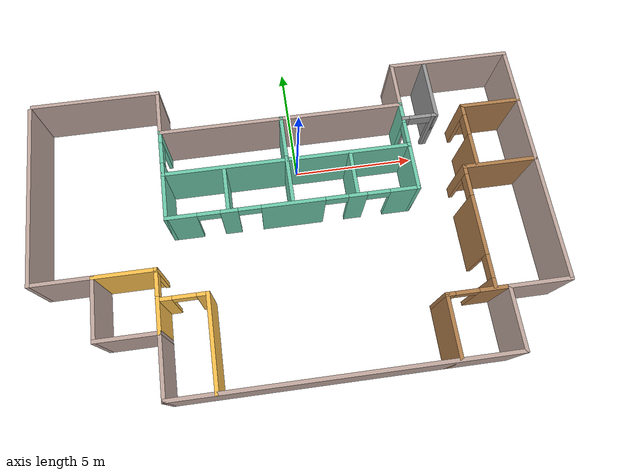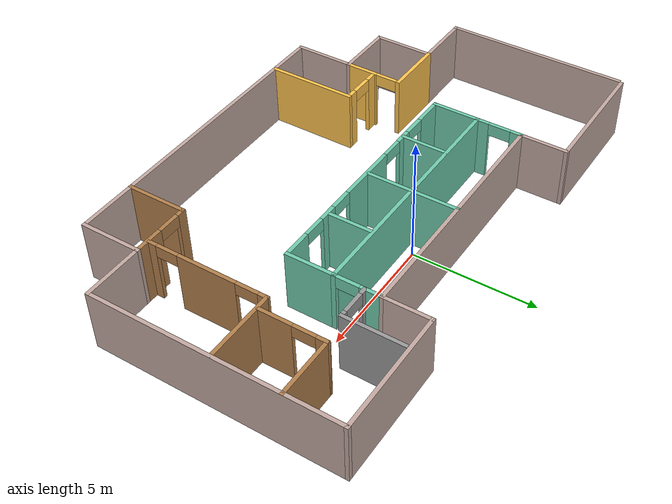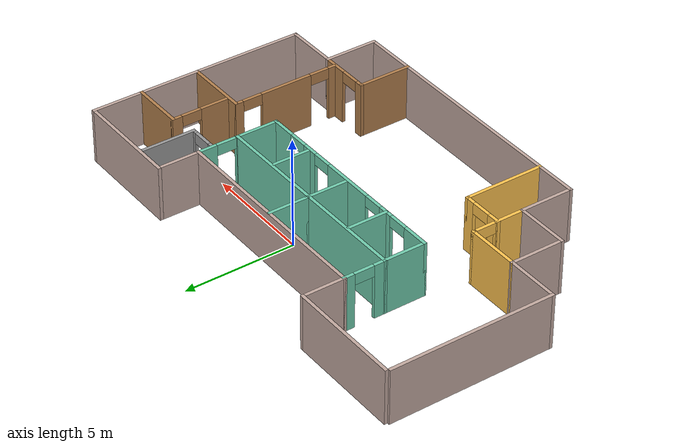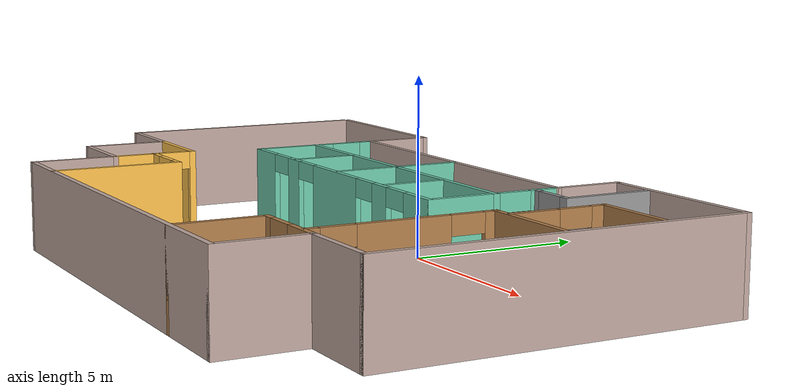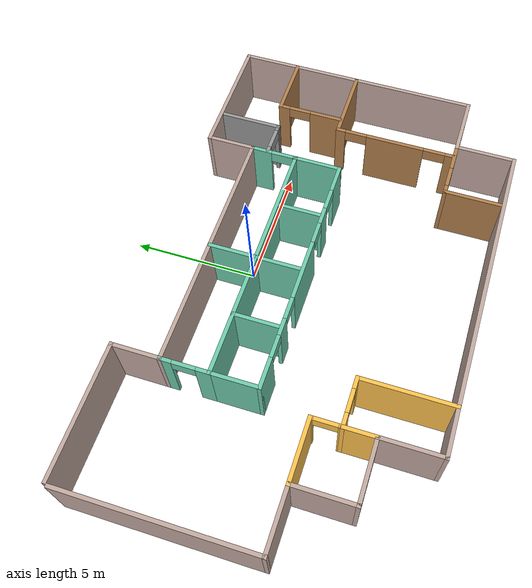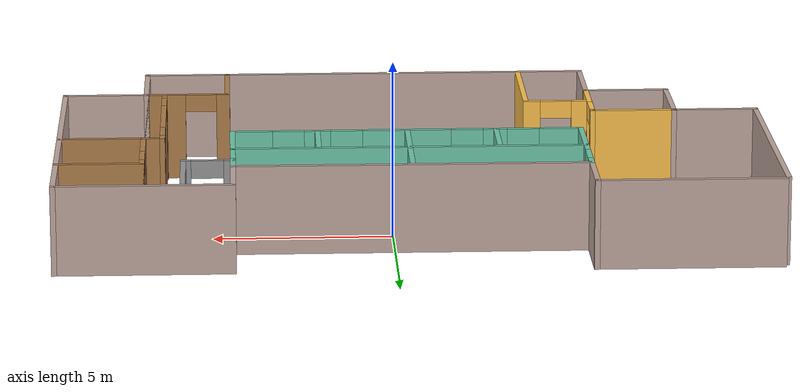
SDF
<?xml version='1.0'?>
<sdf version='1.7'>
  <model name='Building'>
    <pose>-0.660873 -2.80363 0 0 -0 0</pose>
    <link name='Wall_10'>
      <collision name='Wall_10_Collision'>
        <geometry>
          <box>
            <size>2.5 0.15 2.5</size>
          </box>
        </geometry>
        <pose>0 0 1.25 0 -0 0</pose>
      </collision>
      <visual name='Wall_10_Visual'>
        <pose>0 0 1.25 0 -0 0</pose>
        <geometry>
          <box>
            <size>2.5 0.15 2.5</size>
          </box>
        </geometry>
        <material>
          <script>
            <uri>file://media/materials/scripts/gazebo.material</uri>
            <name>Gazebo/Grey</name>
          </script>
          <ambient>0.760784 0.662745 0.627451 1</ambient>
        </material>
        <meta>
          <layer>0</layer>
        </meta>
      </visual>
      <pose>7.6 -4.925 0 0 -0 1.5708</pose>
    </link>
    <link name='Wall_11'>
      <collision name='Wall_11_Collision'>
        <geometry>
          <box>
            <size>2.5 0.15 2.5</size>
          </box>
        </geometry>
        <pose>0 0 1.25 0 -0 0</pose>
      </collision>
      <visual name='Wall_11_Visual'>
        <pose>0 0 1.25 0 -0 0</pose>
        <geometry>
          <box>
            <size>2.5 0.15 2.5</size>
          </box>
        </geometry>
        <material>
          <script>
            <uri>file://media/materials/scripts/gazebo.material</uri>
            <name>Gazebo/Grey</name>
          </script>
          <ambient>0.760784 0.662745 0.627451 1</ambient>
        </material>
        <meta>
          <layer>0</layer>
        </meta>
      </visual>
      <pose>8.775 -3.75 0 0 -0 0</pose>
    </link>
    <link name='Wall_12'>
      <collision name='Wall_12_Collision'>
        <geometry>
          <box>
            <size>10 0.15 2.5</size>
          </box>
        </geometry>
        <pose>0 0 1.25 0 -0 0</pose>
      </collision>
      <visual name='Wall_12_Visual'>
        <pose>0 0 1.25 0 -0 0</pose>
        <geometry>
          <box>
            <size>10 0.15 2.5</size>
          </box>
        </geometry>
        <material>
          <script>
            <uri>file://media/materials/scripts/gazebo.material</uri>
            <name>Gazebo/Grey</name>
          </script>
          <ambient>0.760784 0.662745 0.627451 1</ambient>
        </material>
        <meta>
          <layer>0</layer>
        </meta>
      </visual>
      <pose>9.95 1.175 0 0 -0 1.5708</pose>
    </link>
    <link name='Wall_14'>
      <collision name='Wall_14_Collision'>
        <geometry>
          <box>
            <size>5 0.15 2.5</size>
          </box>
        </geometry>
        <pose>0 0 1.25 0 -0 0</pose>
      </collision>
      <visual name='Wall_14_Visual'>
        <pose>0 0 1.25 0 -0 0</pose>
        <geometry>
          <box>
            <size>5 0.15 2.5</size>
          </box>
        </geometry>
        <material>
          <script>
            <uri>file://media/materials/scripts/gazebo.material</uri>
            <name>Gazebo/Grey</name>
          </script>
          <ambient>0.760784 0.662745 0.627451 1</ambient>
        </material>
        <meta>
          <layer>0</layer>
        </meta>
      </visual>
      <pose>7.525 6.1 0 0 -0 3.14159</pose>
    </link>
    <link name='Wall_15'>
      <collision name='Wall_15_Collision'>
        <geometry>
          <box>
            <size>2 0.15 2.5</size>
          </box>
        </geometry>
        <pose>0 0 1.25 0 -0 0</pose>
      </collision>
      <visual name='Wall_15_Visual'>
        <pose>0 0 1.25 0 -0 0</pose>
        <geometry>
          <box>
            <size>2 0.15 2.5</size>
          </box>
        </geometry>
        <material>
          <script>
            <uri>file://media/materials/scripts/gazebo.material</uri>
            <name>Gazebo/Grey</name>
          </script>
          <ambient>0.760784 0.662745 0.627451 1</ambient>
        </material>
        <meta>
          <layer>0</layer>
        </meta>
      </visual>
      <pose>5.1 5.175 0 0 -0 -1.5708</pose>
    </link>
    <link name='Wall_17'>
      <collision name='Wall_17_Collision'>
        <geometry>
          <box>
            <size>10 0.15 2.5</size>
          </box>
        </geometry>
        <pose>0 0 1.25 0 -0 0</pose>
      </collision>
      <visual name='Wall_17_Visual'>
        <pose>0 0 1.25 0 -0 0</pose>
        <geometry>
          <box>
            <size>10 0.15 2.5</size>
          </box>
        </geometry>
        <material>
          <script>
            <uri>file://media/materials/scripts/gazebo.material</uri>
            <name>Gazebo/Grey</name>
          </script>
          <ambient>0.760784 0.662745 0.627451 1</ambient>
        </material>
        <meta>
          <layer>0</layer>
        </meta>
      </visual>
      <pose>0.175 4.25 0 0 -0 3.14159</pose>
    </link>
    <link name='Wall_18'>
      <collision name='Wall_18_Collision'>
        <geometry>
          <box>
            <size>2 0.15 2.5</size>
          </box>
        </geometry>
        <pose>0 0 1.25 0 -0 0</pose>
      </collision>
      <visual name='Wall_18_Visual'>
        <pose>0 0 1.25 0 -0 0</pose>
        <geometry>
          <box>
            <size>2 0.15 2.5</size>
          </box>
        </geometry>
        <material>
          <script>
            <uri>file://media/materials/scripts/gazebo.material</uri>
            <name>Gazebo/Grey</name>
          </script>
          <ambient>0.760784 0.662745 0.627451 1</ambient>
        </material>
        <meta>
          <layer>0</layer>
        </meta>
      </visual>
      <pose>-4.75 5.175 0 0 -0 1.5708</pose>
    </link>
    <link name='Wall_21'>
      <collision name='Wall_21_Collision'>
        <geometry>
          <box>
            <size>7.5 0.15 2.5</size>
          </box>
        </geometry>
        <pose>0 0 1.25 0 -0 0</pose>
      </collision>
      <visual name='Wall_21_Visual'>
        <pose>0 0 1.25 0 -0 0</pose>
        <geometry>
          <box>
            <size>7.5 0.15 2.5</size>
          </box>
        </geometry>
        <material>
          <script>
            <uri>file://media/materials/scripts/gazebo.material</uri>
            <name>Gazebo/Grey</name>
          </script>
          <ambient>0.760784 0.662745 0.627451 1</ambient>
        </material>
        <meta>
          <layer>0</layer>
        </meta>
      </visual>
      <pose>-9.95 2.275 0 0 -0 1.5708</pose>
    </link>
    <link name='Wall_23'>
      <collision name='Wall_23_Collision'>
        <geometry>
          <box>
            <size>5.25 0.15 2.5</size>
          </box>
        </geometry>
        <pose>0 0 1.25 0 -0 0</pose>
      </collision>
      <visual name='Wall_23_Visual'>
        <pose>0 0 1.25 0 -0 0</pose>
        <geometry>
          <box>
            <size>5.25 0.15 2.5</size>
          </box>
        </geometry>
        <material>
          <script>
            <uri>file://media/materials/scripts/gazebo.material</uri>
            <name>Gazebo/Grey</name>
          </script>
          <ambient>0.760784 0.662745 0.627451 1</ambient>
        </material>
        <meta>
          <layer>0</layer>
        </meta>
      </visual>
      <pose>-7.3 6.1 0 0 -0 3.14159</pose>
    </link>
    <link name='Wall_25'>
      <collision name='Wall_25_Collision'>
        <geometry>
          <box>
            <size>2.5 0.15 2.5</size>
          </box>
        </geometry>
        <pose>0 0 1.25 0 -0 0</pose>
      </collision>
      <visual name='Wall_25_Visual'>
        <pose>0 0 1.25 0 -0 0</pose>
        <geometry>
          <box>
            <size>2.5 0.15 2.5</size>
          </box>
        </geometry>
        <material>
          <script>
            <uri>file://media/materials/scripts/gazebo.material</uri>
            <name>Gazebo/Grey</name>
          </script>
          <ambient>1 0.764706 0.305882 1</ambient>
        </material>
        <meta>
          <layer>0</layer>
        </meta>
      </visual>
      <pose>-6.425 -1.4 0 0 -0 0</pose>
    </link>
    <link name='Wall_26'>
      <pose>-5.25 -2.575 0 0 -0 -1.5708</pose>
      <visual name='Wall_26_Visual_0'>
        <pose>-1.15697 0 1.25 0 -0 0</pose>
        <geometry>
          <box>
            <size>0.186058 0.15 2.5</size>
          </box>
        </geometry>
        <material>
          <script>
            <uri>file://media/materials/scripts/gazebo.material</uri>
            <name>Gazebo/Grey</name>
          </script>
          <ambient>1 0.764706 0.305882 1</ambient>
        </material>
        <meta>
          <layer>0</layer>
        </meta>
      </visual>
      <collision name='Wall_26_Collision_0'>
        <geometry>
          <box>
            <size>0.186058 0.15 2.5</size>
          </box>
        </geometry>
        <pose>-1.15697 0 1.25 0 -0 0</pose>
      </collision>
      <visual name='Wall_26_Visual_1'>
        <pose>0.543029 0 1.25 0 -0 0</pose>
        <geometry>
          <box>
            <size>1.41394 0.15 2.5</size>
          </box>
        </geometry>
        <material>
          <script>
            <uri>file://media/materials/scripts/gazebo.material</uri>
            <name>Gazebo/Grey</name>
          </script>
          <ambient>1 0.764706 0.305882 1</ambient>
        </material>
        <meta>
          <layer>0</layer>
        </meta>
      </visual>
      <collision name='Wall_26_Collision_1'>
        <geometry>
          <box>
            <size>1.41394 0.15 2.5</size>
          </box>
        </geometry>
        <pose>0.543029 0 1.25 0 -0 0</pose>
      </collision>
      <visual name='Wall_26_Visual_2'>
        <pose>-0.613942 0 2.25 0 -0 0</pose>
        <geometry>
          <box>
            <size>0.9 0.15 0.5</size>
          </box>
        </geometry>
        <material>
          <script>
            <uri>file://media/materials/scripts/gazebo.material</uri>
            <name>Gazebo/Grey</name>
          </script>
          <ambient>1 0.764706 0.305882 1</ambient>
        </material>
        <meta>
          <layer>0</layer>
        </meta>
      </visual>
      <collision name='Wall_26_Collision_2'>
        <geometry>
          <box>
            <size>0.9 0.15 0.5</size>
          </box>
        </geometry>
        <pose>-0.613942 0 2.25 0 -0 0</pose>
      </collision>
    </link>
    <link name='Wall_3'>
      <collision name='Wall_3_Collision'>
        <geometry>
          <box>
            <size>13 0.15 2.5</size>
          </box>
        </geometry>
        <pose>0 0 1.25 0 -0 0</pose>
      </collision>
      <visual name='Wall_3_Visual'>
        <pose>0 0 1.25 0 -0 0</pose>
        <geometry>
          <box>
            <size>13 0.15 2.5</size>
          </box>
        </geometry>
        <material>
          <script>
            <uri>file://media/materials/scripts/gazebo.material</uri>
            <name>Gazebo/Grey</name>
          </script>
          <ambient>0.760784 0.662745 0.627451 1</ambient>
        </material>
        <meta>
          <layer>0</layer>
        </meta>
      </visual>
      <pose>1.175 -6.1 0 0 -0 0</pose>
    </link>
    <link name='Wall_30'>
      <pose>-4.33028 -2.54296 0 0 -0 0</pose>
      <visual name='Wall_30_Visual_0'>
        <pose>-0.698175 0 1.25 0 -0 0</pose>
        <geometry>
          <box>
            <size>0.60365 0.15 2.5</size>
          </box>
        </geometry>
        <material>
          <script>
            <uri>file://media/materials/scripts/gazebo.material</uri>
            <name>Gazebo/Grey</name>
          </script>
          <ambient>1 0.764706 0.305882 1</ambient>
        </material>
        <meta>
          <layer>0</layer>
        </meta>
      </visual>
      <collision name='Wall_30_Collision_0'>
        <geometry>
          <box>
            <size>0.60365 0.15 2.5</size>
          </box>
        </geometry>
        <pose>-0.698175 0 1.25 0 -0 0</pose>
      </collision>
      <visual name='Wall_30_Visual_1'>
        <pose>0.751825 0 1.25 0 -0 0</pose>
        <geometry>
          <box>
            <size>0.49635 0.15 2.5</size>
          </box>
        </geometry>
        <material>
          <script>
            <uri>file://media/materials/scripts/gazebo.material</uri>
            <name>Gazebo/Grey</name>
          </script>
          <ambient>1 0.764706 0.305882 1</ambient>
        </material>
        <meta>
          <layer>0</layer>
        </meta>
      </visual>
      <collision name='Wall_30_Collision_1'>
        <geometry>
          <box>
            <size>0.49635 0.15 2.5</size>
          </box>
        </geometry>
        <pose>0.751825 0 1.25 0 -0 0</pose>
      </collision>
      <visual name='Wall_30_Visual_2'>
        <pose>0.05365 0 2.25 0 -0 0</pose>
        <geometry>
          <box>
            <size>0.9 0.15 0.5</size>
          </box>
        </geometry>
        <material>
          <script>
            <uri>file://media/materials/scripts/gazebo.material</uri>
            <name>Gazebo/Grey</name>
          </script>
          <ambient>1 0.764706 0.305882 1</ambient>
        </material>
        <meta>
          <layer>0</layer>
        </meta>
      </visual>
      <collision name='Wall_30_Collision_2'>
        <geometry>
          <box>
            <size>0.9 0.15 0.5</size>
          </box>
        </geometry>
        <pose>0.05365 0 2.25 0 -0 0</pose>
      </collision>
    </link>
    <link name='Wall_31'>
      <collision name='Wall_31_Collision'>
        <geometry>
          <box>
            <size>3.7 0.15 2.5</size>
          </box>
        </geometry>
        <pose>0 0 1.25 0 -0 0</pose>
      </collision>
      <visual name='Wall_31_Visual'>
        <pose>0 0 1.25 0 -0 0</pose>
        <geometry>
          <box>
            <size>3.7 0.15 2.5</size>
          </box>
        </geometry>
        <material>
          <script>
            <uri>file://media/materials/scripts/gazebo.material</uri>
            <name>Gazebo/Grey</name>
          </script>
          <ambient>1 0.764706 0.305882 1</ambient>
        </material>
        <meta>
          <layer>0</layer>
        </meta>
      </visual>
      <pose>-3.40528 -4.31796 0 0 -0 -1.5708</pose>
    </link>
    <link name='Wall_33'>
      <pose>6.425 -3.75 0 0 -0 3.14159</pose>
      <visual name='Wall_33_Visual_0'>
        <pose>-0.64371 0 1.25 0 -0 0</pose>
        <geometry>
          <box>
            <size>1.21258 0.15 2.5</size>
          </box>
        </geometry>
        <material>
          <script>
            <uri>file://media/materials/scripts/gazebo.material</uri>
            <name>Gazebo/Wood</name>
          </script>
          <ambient>0.996078 0.47451 0.0196078 1</ambient>
        </material>
        <meta>
          <layer>0</layer>
        </meta>
      </visual>
      <collision name='Wall_33_Collision_0'>
        <geometry>
          <box>
            <size>1.21258 0.15 2.5</size>
          </box>
        </geometry>
        <pose>-0.64371 0 1.25 0 -0 0</pose>
      </collision>
      <visual name='Wall_33_Visual_1'>
        <pose>1.05629 0 1.25 0 -0 0</pose>
        <geometry>
          <box>
            <size>0.387421 0.15 2.5</size>
          </box>
        </geometry>
        <material>
          <script>
            <uri>file://media/materials/scripts/gazebo.material</uri>
            <name>Gazebo/Wood</name>
          </script>
          <ambient>0.996078 0.47451 0.0196078 1</ambient>
        </material>
        <meta>
          <layer>0</layer>
        </meta>
      </visual>
      <collision name='Wall_33_Collision_1'>
        <geometry>
          <box>
            <size>0.387421 0.15 2.5</size>
          </box>
        </geometry>
        <pose>1.05629 0 1.25 0 -0 0</pose>
      </collision>
      <visual name='Wall_33_Visual_2'>
        <pose>0.412579 0 2.25 0 -0 0</pose>
        <geometry>
          <box>
            <size>0.9 0.15 0.5</size>
          </box>
        </geometry>
        <material>
          <script>
            <uri>file://media/materials/scripts/gazebo.material</uri>
            <name>Gazebo/Wood</name>
          </script>
          <ambient>0.996078 0.47451 0.0196078 1</ambient>
        </material>
        <meta>
          <layer>0</layer>
        </meta>
      </visual>
      <collision name='Wall_33_Collision_2'>
        <geometry>
          <box>
            <size>0.9 0.15 0.5</size>
          </box>
        </geometry>
        <pose>0.412579 0 2.25 0 -0 0</pose>
      </collision>
    </link>
    <link name='Wall_34'>
      <collision name='Wall_34_Collision'>
        <geometry>
          <box>
            <size>2.5 0.15 2.5</size>
          </box>
        </geometry>
        <pose>0 0 1.25 0 -0 0</pose>
      </collision>
      <visual name='Wall_34_Visual'>
        <pose>0 0 1.25 0 -0 0</pose>
        <geometry>
          <box>
            <size>2.5 0.15 2.5</size>
          </box>
        </geometry>
        <material>
          <script>
            <uri>file://media/materials/scripts/gazebo.material</uri>
            <name>Gazebo/Wood</name>
          </script>
          <ambient>0.996078 0.47451 0.0196078 1</ambient>
        </material>
        <meta>
          <layer>0</layer>
        </meta>
      </visual>
      <pose>5.25 -4.925 0 0 -0 -1.5708</pose>
    </link>
    <link name='Wall_36'>
      <pose>7.07042 -1.25531 0 0 -0 1.5708</pose>
      <visual name='Wall_36_Visual_0'>
        <pose>-2.30397 0 1.25 0 -0 0</pose>
        <geometry>
          <box>
            <size>0.39205 0.15 2.5</size>
          </box>
        </geometry>
        <material>
          <script>
            <uri>file://media/materials/scripts/gazebo.material</uri>
            <name>Gazebo/Wood</name>
          </script>
          <ambient>0.996078 0.47451 0.0196078 1</ambient>
        </material>
        <meta>
          <layer>0</layer>
        </meta>
      </visual>
      <collision name='Wall_36_Collision_0'>
        <geometry>
          <box>
            <size>0.39205 0.15 2.5</size>
          </box>
        </geometry>
        <pose>-2.30397 0 1.25 0 -0 0</pose>
      </collision>
      <visual name='Wall_36_Visual_1'>
        <pose>-0.004825 0 1.25 0 -0 0</pose>
        <geometry>
          <box>
            <size>2.40625 0.15 2.5</size>
          </box>
        </geometry>
        <material>
          <script>
            <uri>file://media/materials/scripts/gazebo.material</uri>
            <name>Gazebo/Wood</name>
          </script>
          <ambient>0.996078 0.47451 0.0196078 1</ambient>
        </material>
        <meta>
          <layer>0</layer>
        </meta>
      </visual>
      <collision name='Wall_36_Collision_1'>
        <geometry>
          <box>
            <size>2.40625 0.15 2.5</size>
          </box>
        </geometry>
        <pose>-0.004825 0 1.25 0 -0 0</pose>
      </collision>
      <visual name='Wall_36_Visual_2'>
        <pose>2.29915 0 1.25 0 -0 0</pose>
        <geometry>
          <box>
            <size>0.4017 0.15 2.5</size>
          </box>
        </geometry>
        <material>
          <script>
            <uri>file://media/materials/scripts/gazebo.material</uri>
            <name>Gazebo/Wood</name>
          </script>
          <ambient>0.996078 0.47451 0.0196078 1</ambient>
        </material>
        <meta>
          <layer>0</layer>
        </meta>
      </visual>
      <collision name='Wall_36_Collision_2'>
        <geometry>
          <box>
            <size>0.4017 0.15 2.5</size>
          </box>
        </geometry>
        <pose>2.29915 0 1.25 0 -0 0</pose>
      </collision>
      <visual name='Wall_36_Visual_3'>
        <pose>-1.65795 0 2.25 0 -0 0</pose>
        <geometry>
          <box>
            <size>0.9 0.15 0.5</size>
          </box>
        </geometry>
        <material>
          <script>
            <uri>file://media/materials/scripts/gazebo.material</uri>
            <name>Gazebo/Wood</name>
          </script>
          <ambient>0.996078 0.47451 0.0196078 1</ambient>
        </material>
        <meta>
          <layer>0</layer>
        </meta>
      </visual>
      <collision name='Wall_36_Collision_3'>
        <geometry>
          <box>
            <size>0.9 0.15 0.5</size>
          </box>
        </geometry>
        <pose>-1.65795 0 2.25 0 -0 0</pose>
      </collision>
      <visual name='Wall_36_Visual_4'>
        <pose>1.6483 0 2.25 0 -0 0</pose>
        <geometry>
          <box>
            <size>0.9 0.15 0.5</size>
          </box>
        </geometry>
        <material>
          <script>
            <uri>file://media/materials/scripts/gazebo.material</uri>
            <name>Gazebo/Wood</name>
          </script>
          <ambient>0.996078 0.47451 0.0196078 1</ambient>
        </material>
        <meta>
          <layer>0</layer>
        </meta>
      </visual>
      <collision name='Wall_36_Collision_4'>
        <geometry>
          <box>
            <size>0.9 0.15 0.5</size>
          </box>
        </geometry>
        <pose>1.6483 0 2.25 0 -0 0</pose>
      </collision>
    </link>
    <link name='Wall_37'>
      <collision name='Wall_37_Collision'>
        <geometry>
          <box>
            <size>3 0.15 2.5</size>
          </box>
        </geometry>
        <pose>0 0 1.25 0 -0 0</pose>
      </collision>
      <visual name='Wall_37_Visual'>
        <pose>0 0 1.25 0 -0 0</pose>
        <geometry>
          <box>
            <size>3 0.15 2.5</size>
          </box>
        </geometry>
        <material>
          <script>
            <uri>file://media/materials/scripts/gazebo.material</uri>
            <name>Gazebo/Wood</name>
          </script>
          <ambient>0.996078 0.47451 0.0196078 1</ambient>
        </material>
        <meta>
          <layer>0</layer>
        </meta>
      </visual>
      <pose>8.49542 1.16969 0 0 -0 0</pose>
    </link>
    <link name='Wall_39'>
      <pose>7.59942 2.53939 0 0 -0 1.5708</pose>
      <visual name='Wall_39_Visual_0'>
        <pose>-0.68965 0 1.25 0 -0 0</pose>
        <geometry>
          <box>
            <size>1.3707 0.15 2.5</size>
          </box>
        </geometry>
        <material>
          <script>
            <uri>file://media/materials/scripts/gazebo.material</uri>
            <name>Gazebo/Wood</name>
          </script>
          <ambient>0.996078 0.47451 0.0196078 1</ambient>
        </material>
        <meta>
          <layer>0</layer>
        </meta>
      </visual>
      <collision name='Wall_39_Collision_0'>
        <geometry>
          <box>
            <size>1.3707 0.15 2.5</size>
          </box>
        </geometry>
        <pose>-0.68965 0 1.25 0 -0 0</pose>
      </collision>
      <visual name='Wall_39_Visual_1'>
        <pose>1.13535 0 1.25 0 -0 0</pose>
        <geometry>
          <box>
            <size>0.4793 0.15 2.5</size>
          </box>
        </geometry>
        <material>
          <script>
            <uri>file://media/materials/scripts/gazebo.material</uri>
            <name>Gazebo/Wood</name>
          </script>
          <ambient>0.996078 0.47451 0.0196078 1</ambient>
        </material>
        <meta>
          <layer>0</layer>
        </meta>
      </visual>
      <collision name='Wall_39_Collision_1'>
        <geometry>
          <box>
            <size>0.4793 0.15 2.5</size>
          </box>
        </geometry>
        <pose>1.13535 0 1.25 0 -0 0</pose>
      </collision>
      <visual name='Wall_39_Visual_2'>
        <pose>0.4457 0 2.25 0 -0 0</pose>
        <geometry>
          <box>
            <size>0.9 0.15 0.5</size>
          </box>
        </geometry>
        <material>
          <script>
            <uri>file://media/materials/scripts/gazebo.material</uri>
            <name>Gazebo/Wood</name>
          </script>
          <ambient>0.996078 0.47451 0.0196078 1</ambient>
        </material>
        <meta>
          <layer>0</layer>
        </meta>
      </visual>
      <collision name='Wall_39_Collision_2'>
        <geometry>
          <box>
            <size>0.9 0.15 0.5</size>
          </box>
        </geometry>
        <pose>0.4457 0 2.25 0 -0 0</pose>
      </collision>
    </link>
    <link name='Wall_42'>
      <collision name='Wall_42_Collision'>
        <geometry>
          <box>
            <size>2.5 0.15 2.5</size>
          </box>
        </geometry>
        <pose>0 0 1.25 0 -0 0</pose>
      </collision>
      <visual name='Wall_42_Visual'>
        <pose>0 0 1.25 0 -0 0</pose>
        <geometry>
          <box>
            <size>2.5 0.15 2.5</size>
          </box>
        </geometry>
        <material>
          <script>
            <uri>file://media/materials/scripts/gazebo.material</uri>
            <name>Gazebo/Wood</name>
          </script>
          <ambient>0.996078 0.47451 0.0196078 1</ambient>
        </material>
        <meta>
          <layer>0</layer>
        </meta>
      </visual>
      <pose>8.77442 3.83939 0 0 -0 0</pose>
    </link>
    <link name='Wall_44'>
      <pose>-4.75 3.325 0 0 -0 -1.5708</pose>
      <visual name='Wall_44_Visual_0'>
        <pose>-0.740196 0 1.25 0 -0 0</pose>
        <geometry>
          <box>
            <size>0.519608 0.15 2.5</size>
          </box>
        </geometry>
        <material>
          <script>
            <uri>file://media/materials/scripts/gazebo.material</uri>
            <name>Gazebo/Grey</name>
          </script>
          <ambient>0.435294 0.796078 0.67451 1</ambient>
        </material>
        <meta>
          <layer>0</layer>
        </meta>
      </visual>
      <collision name='Wall_44_Collision_0'>
        <geometry>
          <box>
            <size>0.519608 0.15 2.5</size>
          </box>
        </geometry>
        <pose>-0.740196 0 1.25 0 -0 0</pose>
      </collision>
      <visual name='Wall_44_Visual_1'>
        <pose>0.709804 0 1.25 0 -0 0</pose>
        <geometry>
          <box>
            <size>0.580392 0.15 2.5</size>
          </box>
        </geometry>
        <material>
          <script>
            <uri>file://media/materials/scripts/gazebo.material</uri>
            <name>Gazebo/Grey</name>
          </script>
          <ambient>0.435294 0.796078 0.67451 1</ambient>
        </material>
        <meta>
          <layer>0</layer>
        </meta>
      </visual>
      <collision name='Wall_44_Collision_1'>
        <geometry>
          <box>
            <size>0.580392 0.15 2.5</size>
          </box>
        </geometry>
        <pose>0.709804 0 1.25 0 -0 0</pose>
      </collision>
      <visual name='Wall_44_Visual_2'>
        <pose>-0.030392 0 2.25 0 -0 0</pose>
        <geometry>
          <box>
            <size>0.9 0.15 0.5</size>
          </box>
        </geometry>
        <material>
          <script>
            <uri>file://media/materials/scripts/gazebo.material</uri>
            <name>Gazebo/Grey</name>
          </script>
          <ambient>0.435294 0.796078 0.67451 1</ambient>
        </material>
        <meta>
          <layer>0</layer>
        </meta>
      </visual>
      <collision name='Wall_44_Collision_2'>
        <geometry>
          <box>
            <size>0.9 0.15 0.5</size>
          </box>
        </geometry>
        <pose>-0.030392 0 2.25 0 -0 0</pose>
      </collision>
    </link>
    <link name='Wall_45'>
      <collision name='Wall_45_Collision'>
        <geometry>
          <box>
            <size>10 0.15 2.5</size>
          </box>
        </geometry>
        <pose>0 0 1.25 0 -0 0</pose>
      </collision>
      <visual name='Wall_45_Visual'>
        <pose>0 0 1.25 0 -0 0</pose>
        <geometry>
          <box>
            <size>10 0.15 2.5</size>
          </box>
        </geometry>
        <material>
          <script>
            <uri>file://media/materials/scripts/gazebo.material</uri>
            <name>Gazebo/Grey</name>
          </script>
          <ambient>0.435294 0.796078 0.67451 1</ambient>
        </material>
        <meta>
          <layer>0</layer>
        </meta>
      </visual>
      <pose>0.175 2.4 0 0 -0 0</pose>
    </link>
    <link name='Wall_46'>
      <pose>5.1 3.325 0 0 -0 1.5708</pose>
      <visual name='Wall_46_Visual_0'>
        <pose>-0.908179 0 1.25 0 -0 0</pose>
        <geometry>
          <box>
            <size>0.183642 0.15 2.5</size>
          </box>
        </geometry>
        <material>
          <script>
            <uri>file://media/materials/scripts/gazebo.material</uri>
            <name>Gazebo/Grey</name>
          </script>
          <ambient>0.435294 0.796078 0.67451 1</ambient>
        </material>
        <meta>
          <layer>0</layer>
        </meta>
      </visual>
      <collision name='Wall_46_Collision_0'>
        <geometry>
          <box>
            <size>0.183642 0.15 2.5</size>
          </box>
        </geometry>
        <pose>-0.908179 0 1.25 0 -0 0</pose>
      </collision>
      <visual name='Wall_46_Visual_1'>
        <pose>0.541821 0 1.25 0 -0 0</pose>
        <geometry>
          <box>
            <size>0.916358 0.15 2.5</size>
          </box>
        </geometry>
        <material>
          <script>
            <uri>file://media/materials/scripts/gazebo.material</uri>
            <name>Gazebo/Grey</name>
          </script>
          <ambient>0.435294 0.796078 0.67451 1</ambient>
        </material>
        <meta>
          <layer>0</layer>
        </meta>
      </visual>
      <collision name='Wall_46_Collision_1'>
        <geometry>
          <box>
            <size>0.916358 0.15 2.5</size>
          </box>
        </geometry>
        <pose>0.541821 0 1.25 0 -0 0</pose>
      </collision>
      <visual name='Wall_46_Visual_2'>
        <pose>-0.366358 0 2.25 0 -0 0</pose>
        <geometry>
          <box>
            <size>0.9 0.15 0.5</size>
          </box>
        </geometry>
        <material>
          <script>
            <uri>file://media/materials/scripts/gazebo.material</uri>
            <name>Gazebo/Grey</name>
          </script>
          <ambient>0.435294 0.796078 0.67451 1</ambient>
        </material>
        <meta>
          <layer>0</layer>
        </meta>
      </visual>
      <collision name='Wall_46_Collision_2'>
        <geometry>
          <box>
            <size>0.9 0.15 0.5</size>
          </box>
        </geometry>
        <pose>-0.366358 0 2.25 0 -0 0</pose>
      </collision>
    </link>
    <link name='Wall_48'>
      <collision name='Wall_48_Collision'>
        <geometry>
          <box>
            <size>2 0.15 2.5</size>
          </box>
        </geometry>
        <pose>0 0 1.25 0 -0 0</pose>
      </collision>
      <visual name='Wall_48_Visual'>
        <pose>0 0 1.25 0 -0 0</pose>
        <geometry>
          <box>
            <size>2 0.15 2.5</size>
          </box>
        </geometry>
        <material>
          <script>
            <uri>file://media/materials/scripts/gazebo.material</uri>
            <name>Gazebo/Grey</name>
          </script>
          <ambient>0.435294 0.796078 0.67451 1</ambient>
        </material>
        <meta>
          <layer>0</layer>
        </meta>
      </visual>
      <pose>-4.75 1.475 0 0 -0 -1.5708</pose>
    </link>
    <link name='Wall_5'>
      <collision name='Wall_5_Collision'>
        <geometry>
          <box>
            <size>2.5 0.15 2.5</size>
          </box>
        </geometry>
        <pose>0 0 1.25 0 -0 0</pose>
      </collision>
      <visual name='Wall_5_Visual'>
        <pose>0 0 1.25 0 -0 0</pose>
        <geometry>
          <box>
            <size>2.5 0.15 2.5</size>
          </box>
        </geometry>
        <material>
          <script>
            <uri>file://media/materials/scripts/gazebo.material</uri>
            <name>Gazebo/Grey</name>
          </script>
          <ambient>0.760784 0.662745 0.627451 1</ambient>
        </material>
        <meta>
          <layer>0</layer>
        </meta>
      </visual>
      <pose>-5.25 -4.925 0 0 -0 1.5708</pose>
    </link>
    <link name='Wall_53'>
      <pose>0.175 0.55 0 0 -0 0</pose>
      <visual name='Wall_53_Visual_0'>
        <pose>-4.36892 0 1.25 0 -0 0</pose>
        <geometry>
          <box>
            <size>1.26217 0.15 2.5</size>
          </box>
        </geometry>
        <material>
          <script>
            <uri>file://media/materials/scripts/gazebo.material</uri>
            <name>Gazebo/Grey</name>
          </script>
          <ambient>0.435294 0.796078 0.67451 1</ambient>
        </material>
        <meta>
          <layer>0</layer>
        </meta>
      </visual>
      <collision name='Wall_53_Collision_0'>
        <geometry>
          <box>
            <size>1.26217 0.15 2.5</size>
          </box>
        </geometry>
        <pose>-4.36892 0 1.25 0 -0 0</pose>
      </collision>
      <visual name='Wall_53_Visual_1'>
        <pose>-2.49433 0 1.25 0 -0 0</pose>
        <geometry>
          <box>
            <size>0.687 0.15 2.5</size>
          </box>
        </geometry>
        <material>
          <script>
            <uri>file://media/materials/scripts/gazebo.material</uri>
            <name>Gazebo/Grey</name>
          </script>
          <ambient>0.435294 0.796078 0.67451 1</ambient>
        </material>
        <meta>
          <layer>0</layer>
        </meta>
      </visual>
      <collision name='Wall_53_Collision_1'>
        <geometry>
          <box>
            <size>0.687 0.15 2.5</size>
          </box>
        </geometry>
        <pose>-2.49433 0 1.25 0 -0 0</pose>
      </collision>
      <visual name='Wall_53_Visual_2'>
        <pose>0.005196 0 1.25 0 -0 0</pose>
        <geometry>
          <box>
            <size>2.51205 0.15 2.5</size>
          </box>
        </geometry>
        <material>
          <script>
            <uri>file://media/materials/scripts/gazebo.material</uri>
            <name>Gazebo/Grey</name>
          </script>
          <ambient>0.435294 0.796078 0.67451 1</ambient>
        </material>
        <meta>
          <layer>0</layer>
        </meta>
      </visual>
      <collision name='Wall_53_Collision_2'>
        <geometry>
          <box>
            <size>2.51205 0.15 2.5</size>
          </box>
        </geometry>
        <pose>0.005196 0 1.25 0 -0 0</pose>
      </collision>
      <visual name='Wall_53_Visual_3'>
        <pose>2.53117 0 1.25 0 -0 0</pose>
        <geometry>
          <box>
            <size>0.7399 0.15 2.5</size>
          </box>
        </geometry>
        <material>
          <script>
            <uri>file://media/materials/scripts/gazebo.material</uri>
            <name>Gazebo/Grey</name>
          </script>
          <ambient>0.435294 0.796078 0.67451 1</ambient>
        </material>
        <meta>
          <layer>0</layer>
        </meta>
      </visual>
      <collision name='Wall_53_Collision_3'>
        <geometry>
          <box>
            <size>0.7399 0.15 2.5</size>
          </box>
        </geometry>
        <pose>2.53117 0 1.25 0 -0 0</pose>
      </collision>
      <visual name='Wall_53_Visual_4'>
        <pose>4.40056 0 1.25 0 -0 0</pose>
        <geometry>
          <box>
            <size>1.19888 0.15 2.5</size>
          </box>
        </geometry>
        <material>
          <script>
            <uri>file://media/materials/scripts/gazebo.material</uri>
            <name>Gazebo/Grey</name>
          </script>
          <ambient>0.435294 0.796078 0.67451 1</ambient>
        </material>
        <meta>
          <layer>0</layer>
        </meta>
      </visual>
      <collision name='Wall_53_Collision_4'>
        <geometry>
          <box>
            <size>1.19888 0.15 2.5</size>
          </box>
        </geometry>
        <pose>4.40056 0 1.25 0 -0 0</pose>
      </collision>
      <visual name='Wall_53_Visual_5'>
        <pose>-3.28783 0 2.25 0 -0 0</pose>
        <geometry>
          <box>
            <size>0.9 0.15 0.5</size>
          </box>
        </geometry>
        <material>
          <script>
            <uri>file://media/materials/scripts/gazebo.material</uri>
            <name>Gazebo/Grey</name>
          </script>
          <ambient>0.435294 0.796078 0.67451 1</ambient>
        </material>
        <meta>
          <layer>0</layer>
        </meta>
      </visual>
      <collision name='Wall_53_Collision_5'>
        <geometry>
          <box>
            <size>0.9 0.15 0.5</size>
          </box>
        </geometry>
        <pose>-3.28783 0 2.25 0 -0 0</pose>
      </collision>
      <visual name='Wall_53_Visual_6'>
        <pose>-1.70083 0 2.25 0 -0 0</pose>
        <geometry>
          <box>
            <size>0.9 0.15 0.5</size>
          </box>
        </geometry>
        <material>
          <script>
            <uri>file://media/materials/scripts/gazebo.material</uri>
            <name>Gazebo/Grey</name>
          </script>
          <ambient>0.435294 0.796078 0.67451 1</ambient>
        </material>
        <meta>
          <layer>0</layer>
        </meta>
      </visual>
      <collision name='Wall_53_Collision_6'>
        <geometry>
          <box>
            <size>0.9 0.15 0.5</size>
          </box>
        </geometry>
        <pose>-1.70083 0 2.25 0 -0 0</pose>
      </collision>
      <visual name='Wall_53_Visual_7'>
        <pose>1.71122 0 2.25 0 -0 0</pose>
        <geometry>
          <box>
            <size>0.9 0.15 0.5</size>
          </box>
        </geometry>
        <material>
          <script>
            <uri>file://media/materials/scripts/gazebo.material</uri>
            <name>Gazebo/Grey</name>
          </script>
          <ambient>0.435294 0.796078 0.67451 1</ambient>
        </material>
        <meta>
          <layer>0</layer>
        </meta>
      </visual>
      <collision name='Wall_53_Collision_7'>
        <geometry>
          <box>
            <size>0.9 0.15 0.5</size>
          </box>
        </geometry>
        <pose>1.71122 0 2.25 0 -0 0</pose>
      </collision>
      <visual name='Wall_53_Visual_8'>
        <pose>3.35112 0 2.25 0 -0 0</pose>
        <geometry>
          <box>
            <size>0.9 0.15 0.5</size>
          </box>
        </geometry>
        <material>
          <script>
            <uri>file://media/materials/scripts/gazebo.material</uri>
            <name>Gazebo/Grey</name>
          </script>
          <ambient>0.435294 0.796078 0.67451 1</ambient>
        </material>
        <meta>
          <layer>0</layer>
        </meta>
      </visual>
      <collision name='Wall_53_Collision_8'>
        <geometry>
          <box>
            <size>0.9 0.15 0.5</size>
          </box>
        </geometry>
        <pose>3.35112 0 2.25 0 -0 0</pose>
      </collision>
    </link>
    <link name='Wall_54'>
      <collision name='Wall_54_Collision'>
        <geometry>
          <box>
            <size>2 0.15 2.5</size>
          </box>
        </geometry>
        <pose>0 0 1.25 0 -0 0</pose>
      </collision>
      <visual name='Wall_54_Visual'>
        <pose>0 0 1.25 0 -0 0</pose>
        <geometry>
          <box>
            <size>2 0.15 2.5</size>
          </box>
        </geometry>
        <material>
          <script>
            <uri>file://media/materials/scripts/gazebo.material</uri>
            <name>Gazebo/Grey</name>
          </script>
          <ambient>0.435294 0.796078 0.67451 1</ambient>
        </material>
        <meta>
          <layer>0</layer>
        </meta>
      </visual>
      <pose>5.1 1.475 0 0 -0 1.5708</pose>
    </link>
    <link name='Wall_56'>
      <collision name='Wall_56_Collision'>
        <geometry>
          <box>
            <size>1.9 0.15 2.5</size>
          </box>
        </geometry>
        <pose>0 0 1.25 0 -0 0</pose>
      </collision>
      <visual name='Wall_56_Visual'>
        <pose>0 0 1.25 0 -0 0</pose>
        <geometry>
          <box>
            <size>1.9 0.15 2.5</size>
          </box>
        </geometry>
        <material>
          <script>
            <uri>file://media/materials/scripts/gazebo.material</uri>
            <name>Gazebo/Grey</name>
          </script>
          <ambient>0.435294 0.796078 0.67451 1</ambient>
        </material>
        <meta>
          <layer>0</layer>
        </meta>
      </visual>
      <pose>0.166971 3.35754 0 0 -0 1.5708</pose>
    </link>
    <link name='Wall_58'>
      <collision name='Wall_58_Collision'>
        <geometry>
          <box>
            <size>2 0.15 2.5</size>
          </box>
        </geometry>
        <pose>0 0 1.25 0 -0 0</pose>
      </collision>
      <visual name='Wall_58_Visual'>
        <pose>0 0 1.25 0 -0 0</pose>
        <geometry>
          <box>
            <size>2 0.15 2.5</size>
          </box>
        </geometry>
        <material>
          <script>
            <uri>file://media/materials/scripts/gazebo.material</uri>
            <name>Gazebo/Grey</name>
          </script>
          <ambient>0.435294 0.796078 0.67451 1</ambient>
        </material>
        <meta>
          <layer>0</layer>
        </meta>
      </visual>
      <pose>0.166971 1.55754 0 0 -0 -1.5708</pose>
    </link>
    <link name='Wall_6'>
      <collision name='Wall_6_Collision'>
        <geometry>
          <box>
            <size>2.5 0.15 2.5</size>
          </box>
        </geometry>
        <pose>0 0 1.25 0 -0 0</pose>
      </collision>
      <visual name='Wall_6_Visual'>
        <pose>0 0 1.25 0 -0 0</pose>
        <geometry>
          <box>
            <size>2.5 0.15 2.5</size>
          </box>
        </geometry>
        <material>
          <script>
            <uri>file://media/materials/scripts/gazebo.material</uri>
            <name>Gazebo/Grey</name>
          </script>
          <ambient>0.760784 0.662745 0.627451 1</ambient>
        </material>
        <meta>
          <layer>0</layer>
        </meta>
      </visual>
      <pose>-6.425 -3.75 0 0 -0 3.14159</pose>
    </link>
    <link name='Wall_60'>
      <collision name='Wall_60_Collision'>
        <geometry>
          <box>
            <size>1.95 0.15 2.5</size>
          </box>
        </geometry>
        <pose>0 0 1.25 0 -0 0</pose>
      </collision>
      <visual name='Wall_60_Visual'>
        <pose>0 0 1.25 0 -0 0</pose>
        <geometry>
          <box>
            <size>1.95 0.15 2.5</size>
          </box>
        </geometry>
        <material>
          <script>
            <uri>file://media/materials/scripts/gazebo.material</uri>
            <name>Gazebo/Grey</name>
          </script>
          <ambient>0.435294 0.796078 0.67451 1</ambient>
        </material>
        <meta>
          <layer>0</layer>
        </meta>
      </visual>
      <pose>-2.34578 1.47674 0 0 -0 -1.5708</pose>
    </link>
    <link name='Wall_62'>
      <collision name='Wall_62_Collision'>
        <geometry>
          <box>
            <size>1.75 0.15 2.5</size>
          </box>
        </geometry>
        <pose>0 0 1.25 0 -0 0</pose>
      </collision>
      <visual name='Wall_62_Visual'>
        <pose>0 0 1.25 0 -0 0</pose>
        <geometry>
          <box>
            <size>1.75 0.15 2.5</size>
          </box>
        </geometry>
        <material>
          <script>
            <uri>file://media/materials/scripts/gazebo.material</uri>
            <name>Gazebo/Grey</name>
          </script>
          <ambient>0.435294 0.796078 0.67451 1</ambient>
        </material>
        <meta>
          <layer>0</layer>
        </meta>
      </visual>
      <pose>2.70617 1.48544 0 0 -0 -1.5708</pose>
    </link>
    <link name='Wall_7'>
      <collision name='Wall_7_Collision'>
        <geometry>
          <box>
            <size>2.5 0.15 2.5</size>
          </box>
        </geometry>
        <pose>0 0 1.25 0 -0 0</pose>
      </collision>
      <visual name='Wall_7_Visual'>
        <pose>0 0 1.25 0 -0 0</pose>
        <geometry>
          <box>
            <size>2.5 0.15 2.5</size>
          </box>
        </geometry>
        <material>
          <script>
            <uri>file://media/materials/scripts/gazebo.material</uri>
            <name>Gazebo/Grey</name>
          </script>
          <ambient>0.760784 0.662745 0.627451 1</ambient>
        </material>
        <meta>
          <layer>0</layer>
        </meta>
      </visual>
      <pose>-7.6 -2.575 0 0 -0 1.5708</pose>
    </link>
    <link name='Wall_72'>
      <pose>5.78812 3.59344 0 0 -0 0</pose>
      <visual name='Wall_72_Visual_0'>
        <pose>-0.59365 0 1.25 0 -0 0</pose>
        <geometry>
          <box>
            <size>0.3127 0.15 2.5</size>
          </box>
        </geometry>
        <material>
          <script>
            <uri>file://media/materials/scripts/gazebo.material</uri>
            <name>Gazebo/Grey</name>
          </script>
          <ambient>1 1 1 1</ambient>
        </material>
        <meta>
          <layer>0</layer>
        </meta>
      </visual>
      <collision name='Wall_72_Collision_0'>
        <geometry>
          <box>
            <size>0.3127 0.15 2.5</size>
          </box>
        </geometry>
        <pose>-0.59365 0 1.25 0 -0 0</pose>
      </collision>
      <visual name='Wall_72_Visual_1'>
        <pose>0.60635 0 1.25 0 -0 0</pose>
        <geometry>
          <box>
            <size>0.2873 0.15 2.5</size>
          </box>
        </geometry>
        <material>
          <script>
            <uri>file://media/materials/scripts/gazebo.material</uri>
            <name>Gazebo/Grey</name>
          </script>
          <ambient>1 1 1 1</ambient>
        </material>
        <meta>
          <layer>0</layer>
        </meta>
      </visual>
      <collision name='Wall_72_Collision_1'>
        <geometry>
          <box>
            <size>0.2873 0.15 2.5</size>
          </box>
        </geometry>
        <pose>0.60635 0 1.25 0 -0 0</pose>
      </collision>
      <visual name='Wall_72_Visual_2'>
        <pose>0.0127 0 2.25 0 -0 0</pose>
        <geometry>
          <box>
            <size>0.9 0.15 0.5</size>
          </box>
        </geometry>
        <material>
          <script>
            <uri>file://media/materials/scripts/gazebo.material</uri>
            <name>Gazebo/Grey</name>
          </script>
          <ambient>1 1 1 1</ambient>
        </material>
        <meta>
          <layer>0</layer>
        </meta>
      </visual>
      <collision name='Wall_72_Collision_2'>
        <geometry>
          <box>
            <size>0.9 0.15 0.5</size>
          </box>
        </geometry>
        <pose>0.0127 0 2.25 0 -0 0</pose>
      </collision>
    </link>
    <link name='Wall_73'>
      <collision name='Wall_73_Collision'>
        <geometry>
          <box>
            <size>2.5 0.15 2.5</size>
          </box>
        </geometry>
        <pose>0 0 1.25 0 -0 0</pose>
      </collision>
      <visual name='Wall_73_Visual'>
        <pose>0 0 1.25 0 -0 0</pose>
        <geometry>
          <box>
            <size>2.5 0.15 2.5</size>
          </box>
        </geometry>
        <material>
          <script>
            <uri>file://media/materials/scripts/gazebo.material</uri>
            <name>Gazebo/Grey</name>
          </script>
          <ambient>1 1 1 1</ambient>
        </material>
        <meta>
          <layer>0</layer>
        </meta>
      </visual>
      <pose>6.46312 4.76844 0 0 -0 1.5708</pose>
    </link>
    <link name='Wall_8'>
      <collision name='Wall_8_Collision'>
        <geometry>
          <box>
            <size>2.5 0.15 2.5</size>
          </box>
        </geometry>
        <pose>0 0 1.25 0 -0 0</pose>
      </collision>
      <visual name='Wall_8_Visual'>
        <pose>0 0 1.25 0 -0 0</pose>
        <geometry>
          <box>
            <size>2.5 0.15 2.5</size>
          </box>
        </geometry>
        <material>
          <script>
            <uri>file://media/materials/scripts/gazebo.material</uri>
            <name>Gazebo/Grey</name>
          </script>
          <ambient>0.760784 0.662745 0.627451 1</ambient>
        </material>
        <meta>
          <layer>0</layer>
        </meta>
      </visual>
      <pose>-8.775 -1.4 0 0 -0 3.14159</pose>
    </link>
    <static>1</static>
  </model>
</sdf>
